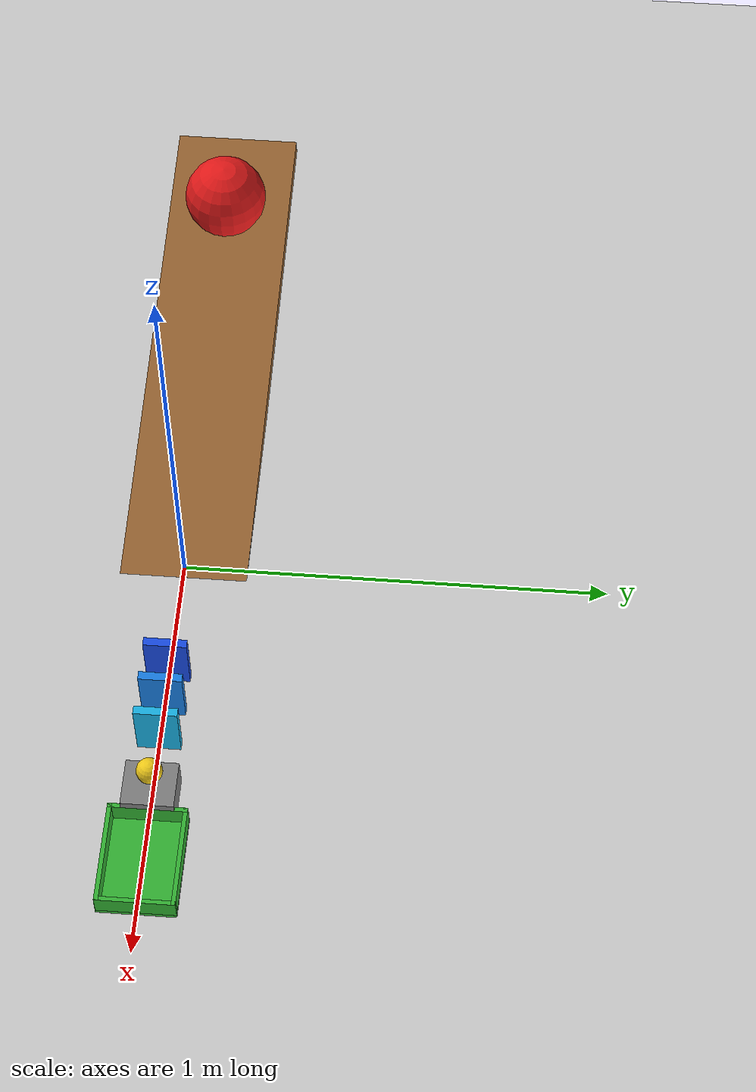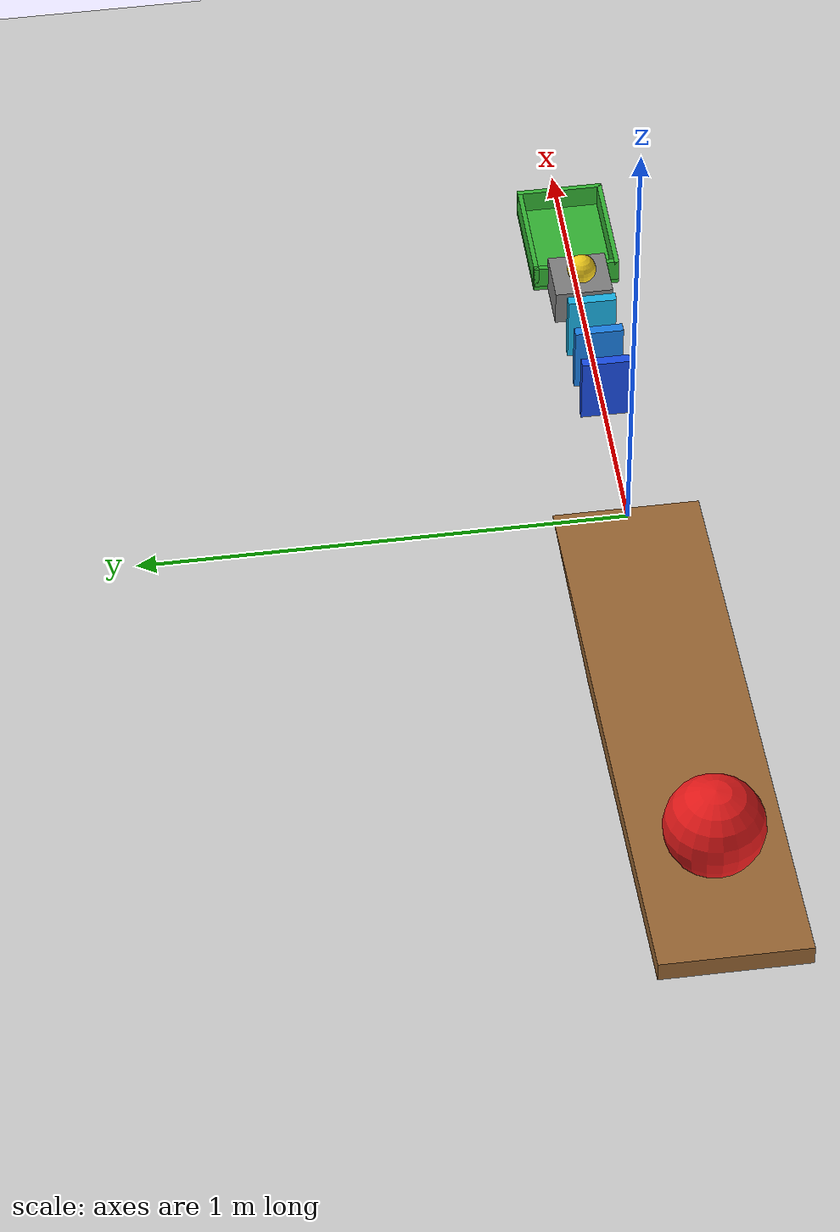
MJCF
<mujoco model="ramp_domino_cup">
  <compiler angle="degree"/>
  <option timestep="0.002" gravity="0 0 -9.81"/>
  <visual>
    <global offwidth="1280" offheight="720"/>
  </visual>
  <worldbody>
    <light name="sun" pos="0 0 3" dir="0 0 -1" diffuse="0.8 0.8 0.8"/>
    <geom name="floor" type="plane" pos="0 0 0" size="3 3 0.1" rgba="0.8 0.8 0.8 1" friction="1 0.005 0.0001"/>

    <body name="ramp" pos="0 0 0">
      <geom name="ramp_deck" type="box" pos="-0.5995 0 0.0324" size="0.65 0.15 0.02" euler="0 5 0" rgba="0.6 0.4 0.2 1" friction="1 0.005 0.0001"/>
    </body>

    <body name="ball1" pos="-0.9875 0 0.1868">
      <freejoint name="ball1_free"/>
      <geom name="ball1_geom" type="sphere" size="0.1" mass="0.1" rgba="0.9 0.1 0.1 1" friction="1 0.005 0.0001"/>
    </body>

    <body name="d1" pos="0.30 0 0.075">
      <freejoint name="d1_free"/>
      <geom name="d1_geom" type="box" size="0.01 0.05 0.075" mass="0.2" rgba="0.1 0.3 0.9 1" friction="1 0.005 0.0001"/>
    </body>

    <body name="d2" pos="0.39 0 0.075">
      <freejoint name="d2_free"/>
      <geom name="d2_geom" type="box" size="0.01 0.05 0.075" mass="0.2" rgba="0.1 0.5 0.9 1" friction="1 0.005 0.0001"/>
    </body>

    <body name="d3" pos="0.48 0 0.075">
      <freejoint name="d3_free"/>
      <geom name="d3_geom" type="box" size="0.01 0.05 0.075" mass="0.2" rgba="0.1 0.7 0.9 1" friction="1 0.005 0.0001"/>
    </body>

    <body name="shelf" pos="0 0 0">
      <geom name="shelf_block" type="box" pos="0.625 0 0.04" size="0.055 0.06 0.04" rgba="0.5 0.5 0.5 1" friction="1 0.005 0.0001"/>
    </body>

    <body name="ball2" pos="0.61 0 0.11">
      <freejoint name="ball2_free"/>
      <geom name="ball2_geom" type="sphere" size="0.03" mass="0.05" rgba="0.95 0.8 0.1 1" friction="1 0.005 0.0001"/>
    </body>

    <body name="cup" pos="0 0 0">
      <geom name="cup_floor" type="box" pos="0.79 0 0.005" size="0.12 0.09 0.005" condim="6" friction="1 0.005 0.005" rgba="0.2 0.7 0.2 1"/>
      <geom name="cup_back" type="box" pos="0.675 0 0.035" size="0.005 0.09 0.025" rgba="0.2 0.7 0.2 1"/>
      <geom name="cup_front" type="box" pos="0.905 0 0.035" size="0.005 0.09 0.025" rgba="0.2 0.7 0.2 1"/>
      <geom name="cup_left" type="box" pos="0.79 0.085 0.035" size="0.12 0.005 0.025" rgba="0.2 0.7 0.2 1"/>
      <geom name="cup_right" type="box" pos="0.79 -0.085 0.035" size="0.12 0.005 0.025" rgba="0.2 0.7 0.2 1"/>
    </body>
  </worldbody>
</mujoco>
